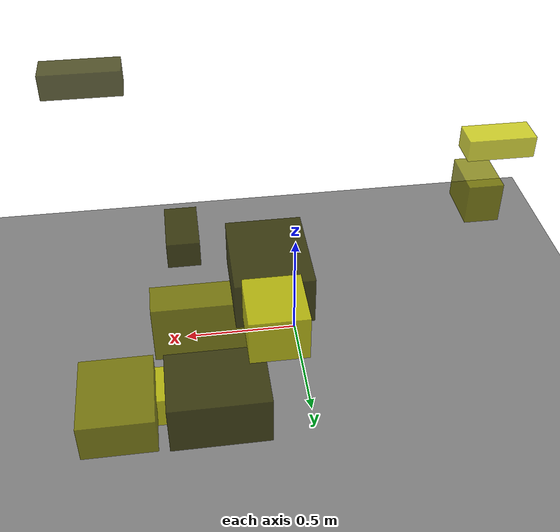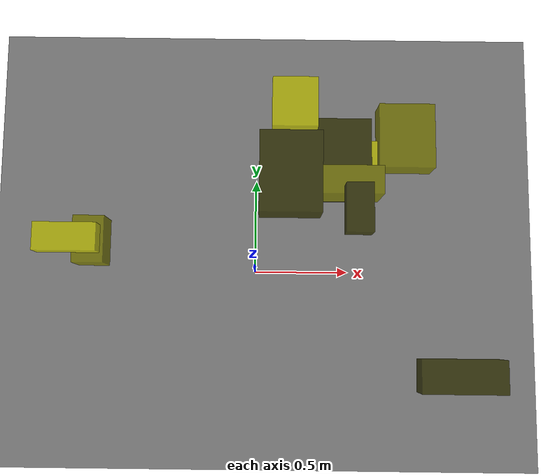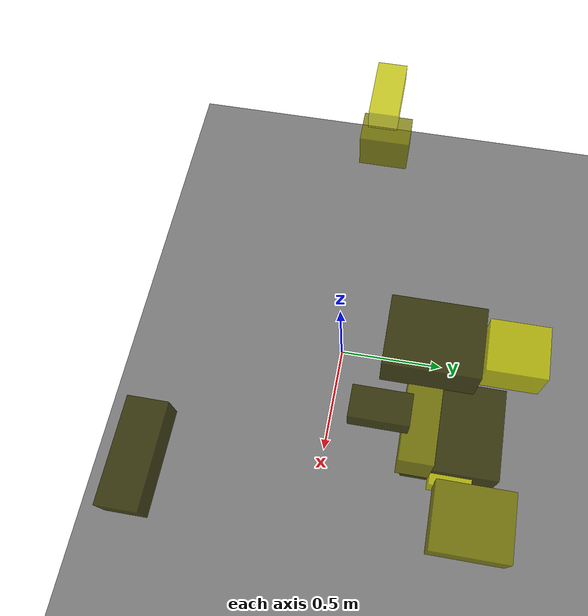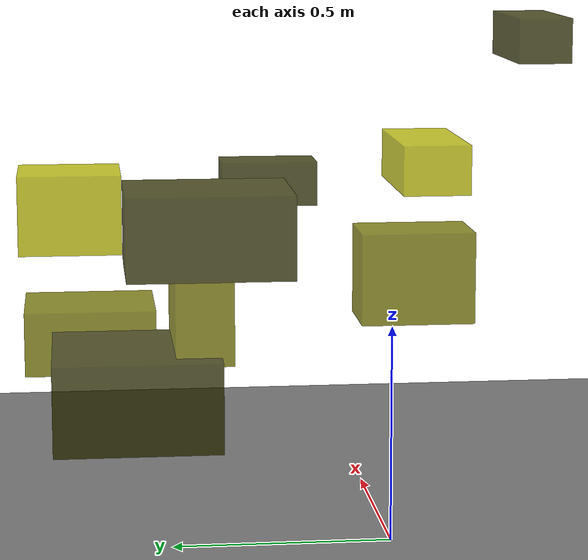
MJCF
<?xml version="1.0"?>
<mujoco model="obstacle_scene">
  <compiler angle="radian" coordinate="local"/>
  <option timestep="0.001" gravity="0 0 -9.81"/>

  <asset>
    <material name="obstacle_mat" rgba="0.8 0.8 0.0 0.8"/>
    <material name="ground_mat" rgba="0.5 0.5 0.5 1"/>
  </asset>

  <worldbody>
    <!-- Ground plane -->
    <geom name="ground" type="plane" size="3 3 0.1" material="ground_mat"/>

    <!-- Obstacles -->
    <body name="obstacle_0" pos="0.850121 -0.493749 1.087327">
      <geom name="obs_0" type="box" size="0.172580 0.068090 0.057540" rgba="0.2 0.2 0.0 0.8"/>
    </body>
    <body name="obstacle_1" pos="-0.739506 0.076262 0.762891">
      <geom name="obs_1" type="box" size="0.070150 0.105724 0.085608" rgba="0.5 0.5 0.0 0.8"/>
    </body>
    <body name="obstacle_2" pos="0.182268 0.719383 0.751554">
      <geom name="obs_2" type="box" size="0.105072 0.115786 0.089665" rgba="0.8 0.8 0.0 0.8"/>
    </body>
    <body name="obstacle_3" pos="0.479738 0.237712 0.767736">
      <geom name="obs_3" type="box" size="0.062155 0.114752 0.053188" rgba="0.2 0.2 0.0 0.8"/>
    </body>
    <body name="obstacle_4" pos="0.441231 0.405965 0.482454">
      <geom name="obs_4" type="box" size="0.181436 0.069614 0.126593" rgba="0.5 0.5 0.0 0.8"/>
    </body>
    <body name="obstacle_5" pos="0.563243 0.575250 0.257932">
      <geom name="obs_5" type="box" size="0.076974 0.088979 0.068009" rgba="0.8 0.8 0.0 0.8"/>
    </body>
    <body name="obstacle_6" pos="0.394971 0.567693 0.267848">
      <geom name="obs_6" type="box" size="0.197796 0.201011 0.109944" rgba="0.2 0.2 0.0 0.8"/>
    </body>
    <body name="obstacle_7" pos="0.771114 0.673402 0.335932">
      <geom name="obs_7" type="box" size="0.141565 0.166088 0.081342" rgba="0.5 0.5 0.0 0.8"/>
    </body>
    <body name="obstacle_8" pos="-0.800303 0.065585 0.982605">
      <geom name="obs_8" type="box" size="0.135116 0.060646 0.044787" rgba="0.8 0.8 0.0 0.8"/>
    </body>
    <body name="obstacle_9" pos="0.165694 0.405607 0.701718">
      <geom name="obs_9" type="box" size="0.146047 0.190943 0.096809" rgba="0.2 0.2 0.0 0.8"/>
    </body>
  </worldbody>
</mujoco>
